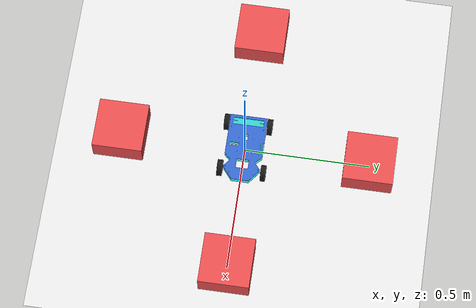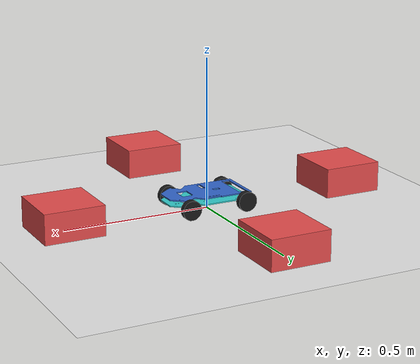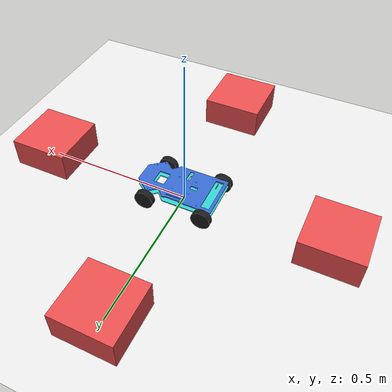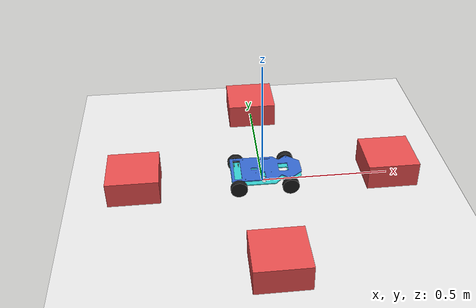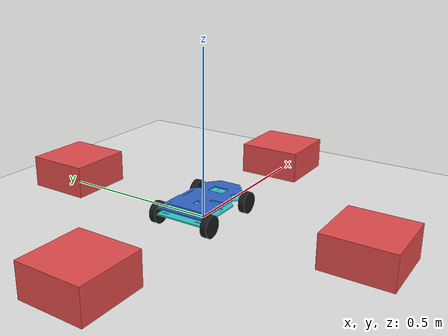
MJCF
<mujoco model="ackermann_robot">

  <compiler angle="degree"/>

  <option timestep="0.002" gravity="0 0 -9.81"/>

  <asset>
    <mesh name="Base" file="../CAD Models/Base.stl"/>
  </asset>

  <asset>
    <mesh name="Ceiling" file="../CAD Models/Ceiling.stl"/>
  </asset>

  <worldbody>

    <light name="top" pos="0 0 3" dir="0 0 -1" diffuse=".6 .6 .6" specular="0.1 0.1 0.1"/>
    <geom name="floor" pos="0 0 0" size="40 40 .1" type="plane"
      rgba="0.9 0.9 0.9 1" friction="1 0.005 0.0001"/>

    <body name="obstacle_box" pos="0.5 0 0.05"> <!-- 0.5 m in front of robot -->
      <geom name="box_geom" type="box" size="0.1 0.1 0.05" rgba="0.9 0.3 0.3 1"
            contype="1" conaffinity="1"/>
    </body>

    <body name="obstacle_box2" pos="0 0.5 0.05"> <!-- 0.5 m in front of robot -->
      <geom name="box_geom2" type="box" size="0.1 0.1 0.05" rgba="0.9 0.3 0.3 1"
            contype="1" conaffinity="1"/>
    </body>

    <body name="obstacle_box3" pos="0 -0.5 0.05"> <!-- 0.5 m in front of robot -->
      <geom name="box_geom3" type="box" size="0.1 0.1 0.05" rgba="0.9 0.3 0.3 1"
            contype="1" conaffinity="1"/>
    </body>

    <body name="obstacle_box1" pos="-0.5 0 0.05"> <!-- 0.5 m in front of robot -->
      <geom name="box_geom1" type="box" size="0.1 0.1 0.05" rgba="0.9 0.3 0.3 1"
            contype="1" conaffinity="1"/>
    </body>

    <!-- Chassis box: length=0.275, width=0.15, height=0.1 -->
    <!-- size uses half-dimensions -->
    <body name="chassis" pos="0 0 0.065">
      <freejoint/>

      <body name="base">
        <geom name="chassis" type="mesh" mesh="Base" euler="90 -90 0" pos="0 0 -0.03" mass="5"
              conaffinity="0" contype="0" rgba="0.2 0.8 0.8 1"/>
      </body>

      <body name="ceiling">
        <geom type="mesh" mesh="Ceiling" pos="0 0 -0.01" euler="90 -90 0"  mass="5"
              conaffinity="0" contype="0" rgba="0.2 0.4 0.8 1"/>
      </body>

      <!-- Rear wheels (with encoders) at x=-0.12, y=±0.06, z=0.065; radius=0.065 -->
      <body name="rear_left" pos="-0.10 0.087 -0.0325">
        <inertial pos="0 0 0" mass="0.05" diaginertia="1e-4 1e-4 1e-4"/>
        <geom name="rear_left_wheel_geom" type="cylinder" size="0.0325 0.01"
          euler="90 0 0" rgba="0.1 0.1 0.1 1" contype="1" conaffinity="1"
          friction="1.4 0.08 0.0015"/>
        <joint name="rear_left_wheel" type="hinge" axis="0 1 0" damping="0.15" frictionloss="0.02" armature="0.002"/>
      </body>
      <body name="rear_right" pos="-0.10 -0.087 -0.0325">
        <inertial pos="0 0 0" mass="0.05" diaginertia="1e-4 1e-4 1e-4"/>
        <geom name="rear_right_wheel_geom" type="cylinder" size="0.0325 0.01"
          euler="90 0 0" rgba="0.1 0.1 0.1 1" contype="1" conaffinity="1"
          friction="1.4 0.08 0.0015"/>
        <joint name="rear_right_wheel" type="hinge" axis="0 1 0" damping="0.15" frictionloss="0.02" armature="0.002"/>
      </body>

      <!-- Front wheels with steering at x=+0.12, y=±0.06, z=0.065; radius=0.065 -->
      <body name="front_left_steer" pos="0.10 0.087 -0.0325">
        <inertial pos="0 0 0" mass="0.1" diaginertia="1e-4 1e-4 1e-4"/>
        <!-- Steering hinge about Z (controlled) -->
        <joint name="front_left_steer" type="hinge" axis="0 0 1" range="-35 35" damping="0.25" frictionloss="0.005"/>
        <body name="front_left" pos="0 0 0">
          <inertial pos="0 0 0" mass="0.05" diaginertia="1e-4 1e-4 1e-4"/>
          <geom name="front_left_wheel_geom" type="cylinder" size="0.0325 0.01"
            euler="90 0 0" rgba="0.1 0.1 0.1 1" contype="1" conaffinity="1"
            friction="1.4 0.08 0.0015"/>
          <!-- Wheel spin hinge about Y (free) -->
          <joint name="front_left_wheel" type="hinge" axis="0 1 0" damping="0.12" frictionloss="0.012" armature="0.0015"/>
        </body>
      </body>
      <body name="front_right_steer" pos="0.10 -0.087 -0.0325">
        <inertial pos="0 0 0" mass="0.1" diaginertia="1e-4 1e-4 1e-4"/>
        <!-- Steering hinge about Z (controlled) -->
        <joint name="front_right_steer" type="hinge" axis="0 0 1" range="-35 35" damping="0.25" frictionloss="0.005"/>
        <body name="front_right" pos="0 0 0">
          <inertial pos="0 0 0" mass="0.05" diaginertia="1e-4 1e-4 1e-4"/>
          <geom name="front_right_wheel_geom" type="cylinder" size="0.0325 0.01"
            euler="90 0 0" rgba="0.1 0.1 0.1 1" contype="1" conaffinity="1"
            friction="1.4 0.08 0.0015"/>
          <!-- Wheel spin hinge about Y (free) -->
          <joint name="front_right_wheel" type="hinge" axis="0 1 0" damping="0.12" frictionloss="0.012" armature="0.0015"/>
        </body>
      </body>

      <!-- 360-degree lidar: 72 beams, 5° spacing, invisible sites for clean visualization -->
      <body name="lidar_360" pos="0 0 0.035">
        <site name="lidar_360_s00" pos="0.035000 0.000000 0" size="0.001" type="sphere" rgba="0 0 0 0" zaxis="1.000000 0.000000 0"/>
        <site name="lidar_360_s01" pos="0.034867 0.003051 0" size="0.001" type="sphere" rgba="0 0 0 0" zaxis="0.996195 0.087156 0"/>
        <site name="lidar_360_s02" pos="0.034468 0.006077 0" size="0.001" type="sphere" rgba="0 0 0 0" zaxis="0.984807 0.173648 0"/>
        <site name="lidar_360_s03" pos="0.033807 0.009059 0" size="0.001" type="sphere" rgba="0 0 0 0" zaxis="0.965926 0.258819 0"/>
        <site name="lidar_360_s04" pos="0.032889 0.011971 0" size="0.001" type="sphere" rgba="0 0 0 0" zaxis="0.939693 0.342020 0"/>
        <site name="lidar_360_s05" pos="0.031721 0.014792 0" size="0.001" type="sphere" rgba="0 0 0 0" zaxis="0.906308 0.422618 0"/>
        <site name="lidar_360_s06" pos="0.030311 0.017500 0" size="0.001" type="sphere" rgba="0 0 0 0" zaxis="0.866025 0.500000 0"/>
        <site name="lidar_360_s07" pos="0.028670 0.020075 0" size="0.001" type="sphere" rgba="0 0 0 0" zaxis="0.819152 0.573576 0"/>
        <site name="lidar_360_s08" pos="0.026811 0.022497 0" size="0.001" type="sphere" rgba="0 0 0 0" zaxis="0.766044 0.642788 0"/>
        <site name="lidar_360_s09" pos="0.024749 0.024749 0" size="0.001" type="sphere" rgba="0 0 0 0" zaxis="0.707107 0.707107 0"/>
        <site name="lidar_360_s10" pos="0.022497 0.026811 0" size="0.001" type="sphere" rgba="0 0 0 0" zaxis="0.642788 0.766044 0"/>
        <site name="lidar_360_s11" pos="0.020075 0.028670 0" size="0.001" type="sphere" rgba="0 0 0 0" zaxis="0.573576 0.819152 0"/>
        <site name="lidar_360_s12" pos="0.017500 0.030311 0" size="0.001" type="sphere" rgba="0 0 0 0" zaxis="0.500000 0.866025 0"/>
        <site name="lidar_360_s13" pos="0.014792 0.031721 0" size="0.001" type="sphere" rgba="0 0 0 0" zaxis="0.422618 0.906308 0"/>
        <site name="lidar_360_s14" pos="0.011971 0.032889 0" size="0.001" type="sphere" rgba="0 0 0 0" zaxis="0.342020 0.939693 0"/>
        <site name="lidar_360_s15" pos="0.009059 0.033807 0" size="0.001" type="sphere" rgba="0 0 0 0" zaxis="0.258819 0.965926 0"/>
        <site name="lidar_360_s16" pos="0.006077 0.034468 0" size="0.001" type="sphere" rgba="0 0 0 0" zaxis="0.173648 0.984807 0"/>
        <site name="lidar_360_s17" pos="0.003051 0.034867 0" size="0.001" type="sphere" rgba="0 0 0 0" zaxis="0.087156 0.996195 0"/>
        <site name="lidar_360_s18" pos="0.000000 0.035000 0" size="0.001" type="sphere" rgba="0 0 0 0" zaxis="0.000000 1.000000 0"/>
        <site name="lidar_360_s19" pos="-0.003051 0.034867 0" size="0.001" type="sphere" rgba="0 0 0 0" zaxis="-0.087156 0.996195 0"/>
        <site name="lidar_360_s20" pos="-0.006077 0.034468 0" size="0.001" type="sphere" rgba="0 0 0 0" zaxis="-0.173648 0.984807 0"/>
        <site name="lidar_360_s21" pos="-0.009059 0.033807 0" size="0.001" type="sphere" rgba="0 0 0 0" zaxis="-0.258819 0.965926 0"/>
        <site name="lidar_360_s22" pos="-0.011971 0.032889 0" size="0.001" type="sphere" rgba="0 0 0 0" zaxis="-0.342020 0.939693 0"/>
        <site name="lidar_360_s23" pos="-0.014792 0.031721 0" size="0.001" type="sphere" rgba="0 0 0 0" zaxis="-0.422618 0.906308 0"/>
        <site name="lidar_360_s24" pos="-0.017500 0.030311 0" size="0.001" type="sphere" rgba="0 0 0 0" zaxis="-0.500000 0.866025 0"/>
        <site name="lidar_360_s25" pos="-0.020075 0.028670 0" size="0.001" type="sphere" rgba="0 0 0 0" zaxis="-0.573576 0.819152 0"/>
        <site name="lidar_360_s26" pos="-0.022497 0.026811 0" size="0.001" type="sphere" rgba="0 0 0 0" zaxis="-0.642788 0.766044 0"/>
        <site name="lidar_360_s27" pos="-0.024749 0.024749 0" size="0.001" type="sphere" rgba="0 0 0 0" zaxis="-0.707107 0.707107 0"/>
        <site name="lidar_360_s28" pos="-0.026811 0.022497 0" size="0.001" type="sphere" rgba="0 0 0 0" zaxis="-0.766044 0.642788 0"/>
        <site name="lidar_360_s29" pos="-0.028670 0.020075 0" size="0.001" type="sphere" rgba="0 0 0 0" zaxis="-0.819152 0.573576 0"/>
        <site name="lidar_360_s30" pos="-0.030311 0.017500 0" size="0.001" type="sphere" rgba="0 0 0 0" zaxis="-0.866025 0.500000 0"/>
        <site name="lidar_360_s31" pos="-0.031721 0.014792 0" size="0.001" type="sphere" rgba="0 0 0 0" zaxis="-0.906308 0.422618 0"/>
        <site name="lidar_360_s32" pos="-0.032889 0.011971 0" size="0.001" type="sphere" rgba="0 0 0 0" zaxis="-0.939693 0.342020 0"/>
        <site name="lidar_360_s33" pos="-0.033807 0.009059 0" size="0.001" type="sphere" rgba="0 0 0 0" zaxis="-0.965926 0.258819 0"/>
        <site name="lidar_360_s34" pos="-0.034468 0.006077 0" size="0.001" type="sphere" rgba="0 0 0 0" zaxis="-0.984807 0.173648 0"/>
        <site name="lidar_360_s35" pos="-0.034867 0.003051 0" size="0.001" type="sphere" rgba="0 0 0 0" zaxis="-0.996195 0.087156 0"/>
        <site name="lidar_360_s36" pos="-0.035000 0.000000 0" size="0.001" type="sphere" rgba="0 0 0 0" zaxis="-1.000000 0.000000 0"/>
        <site name="lidar_360_s37" pos="-0.034867 -0.003051 0" size="0.001" type="sphere" rgba="0 0 0 0" zaxis="-0.996195 -0.087156 0"/>
        <site name="lidar_360_s38" pos="-0.034468 -0.006077 0" size="0.001" type="sphere" rgba="0 0 0 0" zaxis="-0.984807 -0.173648 0"/>
        <site name="lidar_360_s39" pos="-0.033807 -0.009059 0" size="0.001" type="sphere" rgba="0 0 0 0" zaxis="-0.965926 -0.258819 0"/>
        <site name="lidar_360_s40" pos="-0.032889 -0.011971 0" size="0.001" type="sphere" rgba="0 0 0 0" zaxis="-0.939693 -0.342020 0"/>
        <site name="lidar_360_s41" pos="-0.031721 -0.014792 0" size="0.001" type="sphere" rgba="0 0 0 0" zaxis="-0.906308 -0.422618 0"/>
        <site name="lidar_360_s42" pos="-0.030311 -0.017500 0" size="0.001" type="sphere" rgba="0 0 0 0" zaxis="-0.866025 -0.500000 0"/>
        <site name="lidar_360_s43" pos="-0.028670 -0.020075 0" size="0.001" type="sphere" rgba="0 0 0 0" zaxis="-0.819152 -0.573576 0"/>
        <site name="lidar_360_s44" pos="-0.026811 -0.022497 0" size="0.001" type="sphere" rgba="0 0 0 0" zaxis="-0.766044 -0.642788 0"/>
        <site name="lidar_360_s45" pos="-0.024749 -0.024749 0" size="0.001" type="sphere" rgba="0 0 0 0" zaxis="-0.707107 -0.707107 0"/>
        <site name="lidar_360_s46" pos="-0.022497 -0.026811 0" size="0.001" type="sphere" rgba="0 0 0 0" zaxis="-0.642788 -0.766044 0"/>
        <site name="lidar_360_s47" pos="-0.020075 -0.028670 0" size="0.001" type="sphere" rgba="0 0 0 0" zaxis="-0.573576 -0.819152 0"/>
        <site name="lidar_360_s48" pos="-0.017500 -0.030311 0" size="0.001" type="sphere" rgba="0 0 0 0" zaxis="-0.500000 -0.866025 0"/>
        <site name="lidar_360_s49" pos="-0.014792 -0.031721 0" size="0.001" type="sphere" rgba="0 0 0 0" zaxis="-0.422618 -0.906308 0"/>
        <site name="lidar_360_s50" pos="-0.011971 -0.032889 0" size="0.001" type="sphere" rgba="0 0 0 0" zaxis="-0.342020 -0.939693 0"/>
        <site name="lidar_360_s51" pos="-0.009059 -0.033807 0" size="0.001" type="sphere" rgba="0 0 0 0" zaxis="-0.258819 -0.965926 0"/>
        <site name="lidar_360_s52" pos="-0.006077 -0.034468 0" size="0.001" type="sphere" rgba="0 0 0 0" zaxis="-0.173648 -0.984807 0"/>
        <site name="lidar_360_s53" pos="-0.003051 -0.034867 0" size="0.001" type="sphere" rgba="0 0 0 0" zaxis="-0.087156 -0.996195 0"/>
        <site name="lidar_360_s54" pos="-0.000000 -0.035000 0" size="0.001" type="sphere" rgba="0 0 0 0" zaxis="-0.000000 -1.000000 0"/>
        <site name="lidar_360_s55" pos="0.003051 -0.034867 0" size="0.001" type="sphere" rgba="0 0 0 0" zaxis="0.087156 -0.996195 0"/>
        <site name="lidar_360_s56" pos="0.006077 -0.034468 0" size="0.001" type="sphere" rgba="0 0 0 0" zaxis="0.173648 -0.984807 0"/>
        <site name="lidar_360_s57" pos="0.009059 -0.033807 0" size="0.001" type="sphere" rgba="0 0 0 0" zaxis="0.258819 -0.965926 0"/>
        <site name="lidar_360_s58" pos="0.011971 -0.032889 0" size="0.001" type="sphere" rgba="0 0 0 0" zaxis="0.342020 -0.939693 0"/>
        <site name="lidar_360_s59" pos="0.014792 -0.031721 0" size="0.001" type="sphere" rgba="0 0 0 0" zaxis="0.422618 -0.906308 0"/>
        <site name="lidar_360_s60" pos="0.017500 -0.030311 0" size="0.001" type="sphere" rgba="0 0 0 0" zaxis="0.500000 -0.866025 0"/>
        <site name="lidar_360_s61" pos="0.020075 -0.028670 0" size="0.001" type="sphere" rgba="0 0 0 0" zaxis="0.573576 -0.819152 0"/>
        <site name="lidar_360_s62" pos="0.022497 -0.026811 0" size="0.001" type="sphere" rgba="0 0 0 0" zaxis="0.642788 -0.766044 0"/>
        <site name="lidar_360_s63" pos="0.024749 -0.024749 0" size="0.001" type="sphere" rgba="0 0 0 0" zaxis="0.707107 -0.707107 0"/>
        <site name="lidar_360_s64" pos="0.026811 -0.022497 0" size="0.001" type="sphere" rgba="0 0 0 0" zaxis="0.766044 -0.642788 0"/>
        <site name="lidar_360_s65" pos="0.028670 -0.020075 0" size="0.001" type="sphere" rgba="0 0 0 0" zaxis="0.819152 -0.573576 0"/>
        <site name="lidar_360_s66" pos="0.030311 -0.017500 0" size="0.001" type="sphere" rgba="0 0 0 0" zaxis="0.866025 -0.500000 0"/>
        <site name="lidar_360_s67" pos="0.031721 -0.014792 0" size="0.001" type="sphere" rgba="0 0 0 0" zaxis="0.906308 -0.422618 0"/>
        <site name="lidar_360_s68" pos="0.032889 -0.011971 0" size="0.001" type="sphere" rgba="0 0 0 0" zaxis="0.939693 -0.342020 0"/>
        <site name="lidar_360_s69" pos="0.033807 -0.009059 0" size="0.001" type="sphere" rgba="0 0 0 0" zaxis="0.965926 -0.258819 0"/>
        <site name="lidar_360_s70" pos="0.034468 -0.006077 0" size="0.001" type="sphere" rgba="0 0 0 0" zaxis="0.984807 -0.173648 0"/>
        <site name="lidar_360_s71" pos="0.034867 -0.003051 0" size="0.001" type="sphere" rgba="0 0 0 0" zaxis="0.996195 -0.087156 0"/>
      </body>

    </body>
  </worldbody>

  <!-- Removed equality constraint for proper Ackermann steering -->
  <sensor>
    <!-- Rear wheel encoders -->
    <jointpos name="rear_left_pos" joint="rear_left_wheel"/>
    <jointvel name="rear_left_vel" joint="rear_left_wheel"/>

    <jointpos name="rear_right_pos" joint="rear_right_wheel"/>
    <jointvel name="rear_right_vel" joint="rear_right_wheel"/>

    <!-- Optional: steering angle (for debugging or control feedback) -->
    <jointpos name="steering_angle" joint="front_left_steer"/>

    <!-- 360-degree lidar rangefinders: 72 beams for proper lidar simulation -->
    <rangefinder name="rf_360_s00" site="lidar_360_s00" cutoff="12"/>
    <rangefinder name="rf_360_s01" site="lidar_360_s01" cutoff="12"/>
    <rangefinder name="rf_360_s02" site="lidar_360_s02" cutoff="12"/>
    <rangefinder name="rf_360_s03" site="lidar_360_s03" cutoff="12"/>
    <rangefinder name="rf_360_s04" site="lidar_360_s04" cutoff="12"/>
    <rangefinder name="rf_360_s05" site="lidar_360_s05" cutoff="12"/>
    <rangefinder name="rf_360_s06" site="lidar_360_s06" cutoff="12"/>
    <rangefinder name="rf_360_s07" site="lidar_360_s07" cutoff="12"/>
    <rangefinder name="rf_360_s08" site="lidar_360_s08" cutoff="12"/>
    <rangefinder name="rf_360_s09" site="lidar_360_s09" cutoff="12"/>
    <rangefinder name="rf_360_s10" site="lidar_360_s10" cutoff="12"/>
    <rangefinder name="rf_360_s11" site="lidar_360_s11" cutoff="12"/>
    <rangefinder name="rf_360_s12" site="lidar_360_s12" cutoff="12"/>
    <rangefinder name="rf_360_s13" site="lidar_360_s13" cutoff="12"/>
    <rangefinder name="rf_360_s14" site="lidar_360_s14" cutoff="12"/>
    <rangefinder name="rf_360_s15" site="lidar_360_s15" cutoff="12"/>
    <rangefinder name="rf_360_s16" site="lidar_360_s16" cutoff="12"/>
    <rangefinder name="rf_360_s17" site="lidar_360_s17" cutoff="12"/>
    <rangefinder name="rf_360_s18" site="lidar_360_s18" cutoff="12"/>
    <rangefinder name="rf_360_s19" site="lidar_360_s19" cutoff="12"/>
    <rangefinder name="rf_360_s20" site="lidar_360_s20" cutoff="12"/>
    <rangefinder name="rf_360_s21" site="lidar_360_s21" cutoff="12"/>
    <rangefinder name="rf_360_s22" site="lidar_360_s22" cutoff="12"/>
    <rangefinder name="rf_360_s23" site="lidar_360_s23" cutoff="12"/>
    <rangefinder name="rf_360_s24" site="lidar_360_s24" cutoff="12"/>
    <rangefinder name="rf_360_s25" site="lidar_360_s25" cutoff="12"/>
    <rangefinder name="rf_360_s26" site="lidar_360_s26" cutoff="12"/>
    <rangefinder name="rf_360_s27" site="lidar_360_s27" cutoff="12"/>
    <rangefinder name="rf_360_s28" site="lidar_360_s28" cutoff="12"/>
    <rangefinder name="rf_360_s29" site="lidar_360_s29" cutoff="12"/>
    <rangefinder name="rf_360_s30" site="lidar_360_s30" cutoff="12"/>
    <rangefinder name="rf_360_s31" site="lidar_360_s31" cutoff="12"/>
    <rangefinder name="rf_360_s32" site="lidar_360_s32" cutoff="12"/>
    <rangefinder name="rf_360_s33" site="lidar_360_s33" cutoff="12"/>
    <rangefinder name="rf_360_s34" site="lidar_360_s34" cutoff="12"/>
    <rangefinder name="rf_360_s35" site="lidar_360_s35" cutoff="12"/>
    <rangefinder name="rf_360_s36" site="lidar_360_s36" cutoff="12"/>
    <rangefinder name="rf_360_s37" site="lidar_360_s37" cutoff="12"/>
    <rangefinder name="rf_360_s38" site="lidar_360_s38" cutoff="12"/>
    <rangefinder name="rf_360_s39" site="lidar_360_s39" cutoff="12"/>
    <rangefinder name="rf_360_s40" site="lidar_360_s40" cutoff="12"/>
    <rangefinder name="rf_360_s41" site="lidar_360_s41" cutoff="12"/>
    <rangefinder name="rf_360_s42" site="lidar_360_s42" cutoff="12"/>
    <rangefinder name="rf_360_s43" site="lidar_360_s43" cutoff="12"/>
    <rangefinder name="rf_360_s44" site="lidar_360_s44" cutoff="12"/>
    <rangefinder name="rf_360_s45" site="lidar_360_s45" cutoff="12"/>
    <rangefinder name="rf_360_s46" site="lidar_360_s46" cutoff="12"/>
    <rangefinder name="rf_360_s47" site="lidar_360_s47" cutoff="12"/>
    <rangefinder name="rf_360_s48" site="lidar_360_s48" cutoff="12"/>
    <rangefinder name="rf_360_s49" site="lidar_360_s49" cutoff="12"/>
    <rangefinder name="rf_360_s50" site="lidar_360_s50" cutoff="12"/>
    <rangefinder name="rf_360_s51" site="lidar_360_s51" cutoff="12"/>
    <rangefinder name="rf_360_s52" site="lidar_360_s52" cutoff="12"/>
    <rangefinder name="rf_360_s53" site="lidar_360_s53" cutoff="12"/>
    <rangefinder name="rf_360_s54" site="lidar_360_s54" cutoff="12"/>
    <rangefinder name="rf_360_s55" site="lidar_360_s55" cutoff="12"/>
    <rangefinder name="rf_360_s56" site="lidar_360_s56" cutoff="12"/>
    <rangefinder name="rf_360_s57" site="lidar_360_s57" cutoff="12"/>
    <rangefinder name="rf_360_s58" site="lidar_360_s58" cutoff="12"/>
    <rangefinder name="rf_360_s59" site="lidar_360_s59" cutoff="12"/>
    <rangefinder name="rf_360_s60" site="lidar_360_s60" cutoff="12"/>
    <rangefinder name="rf_360_s61" site="lidar_360_s61" cutoff="12"/>
    <rangefinder name="rf_360_s62" site="lidar_360_s62" cutoff="12"/>
    <rangefinder name="rf_360_s63" site="lidar_360_s63" cutoff="12"/>
    <rangefinder name="rf_360_s64" site="lidar_360_s64" cutoff="12"/>
    <rangefinder name="rf_360_s65" site="lidar_360_s65" cutoff="12"/>
    <rangefinder name="rf_360_s66" site="lidar_360_s66" cutoff="12"/>
    <rangefinder name="rf_360_s67" site="lidar_360_s67" cutoff="12"/>
    <rangefinder name="rf_360_s68" site="lidar_360_s68" cutoff="12"/>
    <rangefinder name="rf_360_s69" site="lidar_360_s69" cutoff="12"/>
    <rangefinder name="rf_360_s70" site="lidar_360_s70" cutoff="12"/>
    <rangefinder name="rf_360_s71" site="lidar_360_s71" cutoff="12"/>
  </sensor>

  <equality>
    <!-- Couple left and right steering joints (single servo controls both) -->
    <joint name="steer_coupling" joint1="front_left_steer" joint2="front_right_steer" polycoef="0 1"/>
  </equality>

  <actuator>
    <!-- Single steering servo for bicycle model (real-world compatible) -->
    <position name="steering_servo"
          joint="front_left_steer"
          kp="40" kv="6"
          ctrlrange="-0.61 0.61"
          forcerange="-2 2"/>

    <!-- Rear wheel drive actuators (velocity-controlled) -->
    <velocity name="rear_left_drive"  joint="rear_left_wheel"  kv="1" ctrlrange="-50 50"/>
    <velocity name="rear_right_drive" joint="rear_right_wheel" kv="1" ctrlrange="-50 50"/>

  </actuator>

</mujoco>
